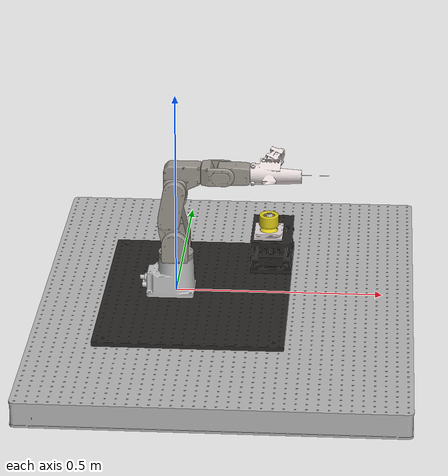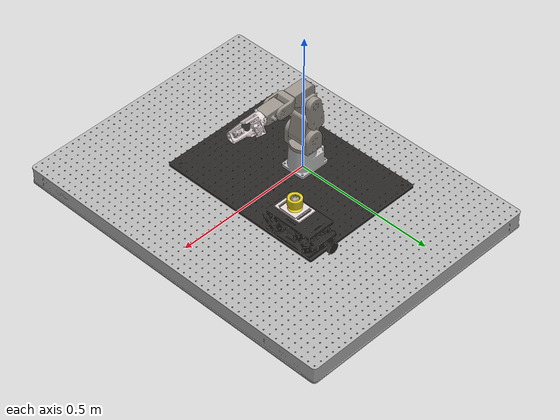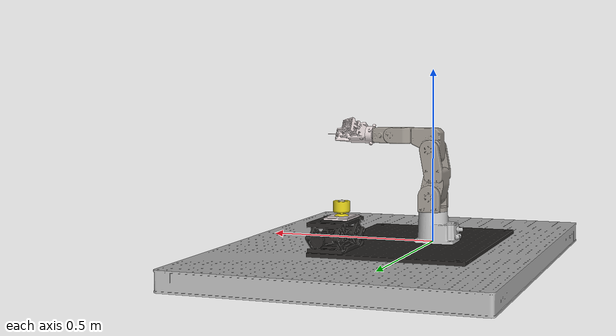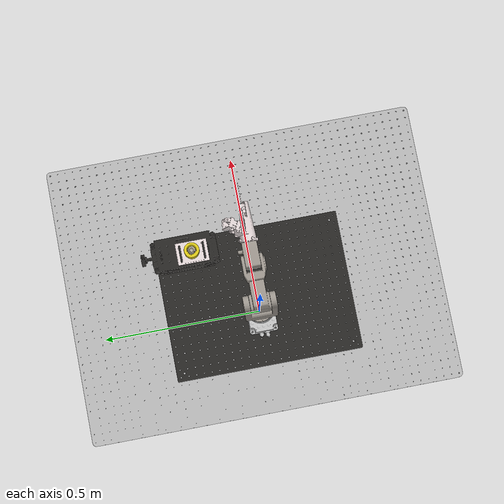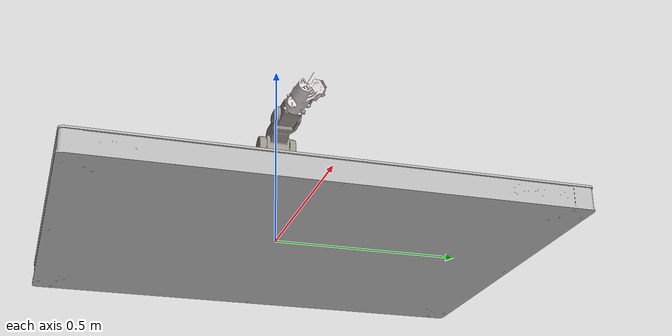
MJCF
<mujoco model="meca_standalone">
  <compiler angle="radian" meshdir="." balanceinertia="true" discardvisual="false"/>
  <option gravity="0 0 -9.81" timestep="0.001" integrator="RK4"/>
  <default>
    <joint damping="0.5" frictionloss="0.2" armature="0.1"/>
    <geom condim="4" solref="0.01 0.9" solimp="0.9 0.95 0.001"/>
    <position ctrllimited="true"/>
  </default>

  <asset>
    <mesh name="base_link" file="STL/base_link.STL"/>
    <mesh name="1_Link" file="STL/1_Link.STL"/>
    <mesh name="2_Link" file="STL/2_Link.STL"/>
    <mesh name="3_Link" file="STL/3_Link.STL"/>
    <mesh name="4_Link" file="STL/4_Link.STL"/>
    <mesh name="5_Link" file="STL/5_Link.STL"/>
    <mesh name="6_Link" file="STL/6_Link.STL"/>
    <mesh name="260107_Total_assembly_simplified" file="STL/260107_Total_assembly_simplified.STL" scale="0.001 0.001 0.001"/>
    <mesh name="Optical_breadboard4560" file="STL/Optical_breadboard4560.STL" scale="0.001 0.001 0.001"/>
    <mesh name="Optical_tabel90120" file="STL/Optical_tabel90120.STL" scale="0.001 0.001 0.001"/>
    <mesh name="Optical_plate" file="STL/Optical_plate.STL" scale="0.001 0.001 0.001"/>
    <mesh name="Trocar_plate" file="STL/Trocar_plate.STL"/>
    <mesh name="Trocar_cover" file="STL/Trocar_cover.STL"/>
    <mesh name="Trocar_gripper" file="STL/Trocar_gripper.STL"/>
    <mesh name="Eye_phantom" file="STL/Eye_phantom.STL"/>
    <mesh name="Eye_trocar" file="STL/Eye_trocar.STL"/>
    <texture name="tex_noise_plastic" type="2d" file="textures/wax.png" rgb1="1 1 1" rgb2="0.9 0.9 0.9"/>
    <texture name="tex_scratch_metal" type="2d" file="textures/metal.png"/>
    <texture name="tex_white_plastic" type="2d" file="textures/plastic.png"/>
    <material name="mat_yellow_resin" texture="tex_noise_plastic"
              rgba="0.95 0.92 0.6 1"
              specular="0.3" shininess="0.1" reflectance="0.3"
              texrepeat="5 5"/>
    <material name="mat_dark_metal" texture="tex_scratch_metal"
              rgba="0.2 0.2 0.2 1"
              specular="0.8" shininess="0.8" reflectance="0.2"
              texrepeat="2 2"/>
    <material name="mat_trocar_metal" texture="tex_scratch_metal"
              rgba="0.7 0.7 0.7 1"
              specular="0.8" shininess="0.8" reflectance="0.2"
              texrepeat="2 2"/>
    <material name="mat_white_plastic" texture="tex_white_plastic"
              rgba="0.95 0.9 0.9 1"
              specular="0.2" shininess="0.1" reflectance="0.0"/>
    <material name="mat_eye_sclera" texture="tex_noise_plastic"
              rgba="0.95 0.95 0.9 1"
              specular="0.9" shininess="0.8" reflectance="0.1"/>
    <material name="mat_robot_metal"  texture="tex_scratch_metal"
              rgba="0.8 0.8 0.8 1"
              specular="0.9" shininess="0.9"/>
  </asset>

  <worldbody>
    <light pos="0.3 0.3 1.0" dir="-0.5 -0.5 -1" directional="true" castshadow="false" diffuse="0.5 0.5 0.5" specular="0.5 0.5 0.5"/>
    <light pos="-0.3 -0.3 0.5" dir="0.5 0.5 -1" directional="true" castshadow="false" diffuse="0.2 0.2 0.2" specular="0.5 0.5 0.5"/>
    <camera name="top_camera" mode="fixed" pos="0.45 -0.025 0.635" fovy="50" euler="0.1 0.6 1.5416"/>
    <camera name="side_camera" mode="fixed" pos="-0.1 0.45 0.175" fovy="50" euler="-1.5708 -0.5 3.1416"/>
    <geom type="mesh" mesh="base_link" pos="0 0.0125 0.0855" quat="0.707105 0 0 -0.707108" rgba="0.75 0.75 0.75 1" contype="0" conaffinity="0" group="1"/>
    <geom size="0.046 0.02" pos="0 0 0.05" type="cylinder" rgba="0.74902 0.74902 0.74902 0"/>
    <body name="1_Link">
      <inertial pos="0.0265829 8.61087e-07 0.0187309" quat="0 0.707107 0 0.707107" mass="0.00110681" diaginertia="2.52756e-08 2.52736e-08 5.67803e-09"/>
      <joint name="1" pos="0 0 0" axis="0 0 1" range="-3.0543 3.0543" actuatorfrcrange="-10 10"/>
      <geom pos="0 0 0.081" quat="0.707105 0 0 -0.707108" type="mesh" material="mat_robot_metal" mesh="1_Link"/>
      <body name="2_Link" pos="0 0 0.135">
        <inertial pos="-0.011581 0.060433 0.025598" quat="0.707107 0 0 0.707107" mass="0.0014997" diaginertia="4.1011e-08 4.1007e-08 4.3707e-09"/>
        <joint name="2" pos="0 0 0" axis="0 1 0" range="-1.2217 1.5708" actuatorfrcrange="-10 10"/>
        <geom quat="0.707105 0.707108 0 0" type="mesh" material="mat_robot_metal" mesh="2_Link"/>
        <body name="3_Link" pos="0 0 0.135">
          <inertial pos="0.00863474 0.0130793 0.000472372" quat="0.610208 0.352554 -0.60274 0.37424" mass="0.369858" diaginertia="0.000449876 0.000401291 0.000237968"/>
          <joint name="3" pos="0 0 0" axis="0 1 0" range="-2.3562 1.2217" actuatorfrcrange="-10 10"/>
          <geom quat="0.707105 0.707108 0 0" type="mesh" material="mat_robot_metal" mesh="3_Link"/>
          <body name="4_Link" pos="0 0 0.038">
            <inertial pos="0.0268017 3.80505e-06 -0.0386581" quat="0.5 0.5 0.5 0.5" mass="5.45514e-05" diaginertia="4.37621e-10 4.37369e-10 6.1925e-11"/>
            <joint name="4" pos="0 0 0" axis="1 0 0" range="-2.9671 2.9671" actuatorfrcrange="-10 10"/>
            <geom pos="0.061 0 0" quat="0.499998 0.5 -0.500002 -0.5" type="mesh" material="mat_robot_metal" mesh="4_Link"/>
            <body name="5_Link" pos="0.12 0 0">
              <inertial pos="0.020511 2.54707e-06 0.000506959" quat="0.485292 0.514377 0.513772 0.485742" mass="0.164362" diaginertia="0.0001195 0.000115999 5.49467e-05"/>
              <joint name="5" pos="0 0 0" axis="0 1 0" range="-2.0071 2.0071" actuatorfrcrange="-10 10"/>
              <geom quat="0.707105 0.707108 0 0" type="mesh" material="mat_robot_metal" mesh="5_Link"/>
              <body name="6_Link" pos="0.07 0 0" quat="0.707107 0 0.707107 0">
                <inertial pos="-4.93382e-09 -3.06476e-06 -0.00515373" quat="0.499788 0.500212 -0.500212 0.499788" mass="0.00318159" diaginertia="1.633e-07 1.12762e-07 1.10035e-07"/>
                <joint name="6" pos="0 0 0" axis="0 0 1" range="-6.2832 6.2832" actuatorfrcrange="-10 10"/>
                <geom pos="0 0 -0.0125" quat="4.63268e-05 0 1 0" type="mesh" material="mat_robot_metal" mesh="6_Link"/>
                <body name="260107_Total_assembly">
                  <inertial pos="0 0 0" mass="0.2" diaginertia="0.001 0.001 0.001"/>
                  <geom pos="-0.07475 -0.0805 -0.011" quat="0.965926 0 0 0.258819" type="mesh" material="mat_white_plastic" mesh="260107_Total_assembly_simplified" contype="0" conaffinity="0"/>
                  <site name="needle_tip" pos="0 0 0.1775" size="0.001" rgba="1 0 0 0"/>
                  <site name="needle_back" pos="0 0 0.1275" size="0.001" rgba="1 0 0 0"/>
                  <camera name="tool_camera" mode="fixed" pos="-0.025 0.045 0.065" fovy="40" euler="0.5 3.3916 -0.453599"/>
                </body>
              </body>
            </body>
          </body>
        </body>
      </body>
    </body>
    <geom pos="0.275 0.59 -0.0135" quat="0.499998 0.5 -0.500002 -0.5" type="mesh" material="mat_dark_metal" mesh="Optical_breadboard4560"/>
    <geom pos="0.575 0.689999 -0.1435" quat="0.499998 0.5 -0.500002 -0.5" type="mesh" rgba="0.7 0.7 0.7 1" mesh="Optical_tabel90120"/>
    <site name="viz_target_tip" pos="0 0 0" size="0.001" rgba="1 0 1 0"/>
    <body name="phantom_assembly" pos="0 0 0">
      <geom pos="0.274999 0.34 -0.0015" quat="0.499998 0.5 -0.500002 -0.5" type="mesh" material="mat_dark_metal" mesh="Optical_plate" contype="0" conaffinity="0"/>
      <body name="rotating_assembly" pos="0.214998 0.165 0.11">
        <geom pos="0 0 0" quat="0.499998 -0.5 0.500002 -0.5" type="mesh" material="mat_white_plastic" mesh="Trocar_plate" contype="0" conaffinity="0"/>
        <body name="Trocar_cover" pos="0.001213 0.010284 -0.006" quat="0.707105 0 0 -0.707108">
          <inertial pos="0 0 0.0031894" mass="0.051623" diaginertia="1.8441e-05 1.8441e-05 1.698e-05"/>
          <geom type="mesh" material="mat_yellow_resin" mesh="Trocar_cover" contype="0" conaffinity="0"/>
          <body name="Trocar_gripper" pos="0 0 0.005" quat="0.572213 0.572216 0.415417 0.415415">
            <inertial pos="6.15922e-08 0.00866204 -8.45455e-08" quat="0.707107 0.707107 0 0" mass="0.0004651" diaginertia="4.62973e-08 4.62973e-08 4.54118e-08"/>
            <geom type="mesh" material="mat_white_plastic" mesh="Trocar_gripper" contype="0" conaffinity="0"/>
            <body name="Eye_phantom" quat="0.685123 0.174941 -0.174941 -0.685126">
              <inertial pos="-0.0124723 -1.50679e-05 -2.5814e-05" quat="0.709403 0.704677 0.013154 -0.00207198" mass="0.00166355" diaginertia="1.67718e-07 1.51029e-07 1.50531e-07"/>
              <geom type="mesh" material="mat_eye_sclera" mesh="Eye_phantom" contype="0" conaffinity="0"/>
              <site name="trocar_depth" pos="-0.0075 0 -0.0075" size="0.001" rgba="1 0 0 0"/>
              <body name="Eye_trocar" pos="-0.018742 -3.9168e-05 0.0062012" quat="0.924581 0.0636132 -0.336065 -0.167821">
                <inertial pos="0 0 0.00446798" mass="7.44793e-06" diaginertia="7.45448e-12 7.45448e-12 5.94805e-12"/>
                <geom type="mesh" material="mat_trocar_metal" mesh="Eye_trocar" contype="0" conaffinity="0"/>
                <site name="trocar_target" pos="0 0 0.0075" size="0.001" rgba="0 1 0 0"/>
              </body>
            </body>
          </body>
        </body>
      </body>
    </body>
  </worldbody>
  <actuator>
    <position name="motor_1" joint="1" kp="500" kv="50" ctrlrange="-3.05 3.05"/>
    <position name="motor_2" joint="2" kp="500" kv="50" ctrlrange="-1.22 1.57"/>
    <position name="motor_3" joint="3" kp="500" kv="50" ctrlrange="-2.35 1.22"/>
    <position name="motor_4" joint="4" kp="200" kv="20" ctrlrange="-2.96 2.96"/>
    <position name="motor_5" joint="5" kp="200" kv="20" ctrlrange="-2.00 2.00"/>
    <position name="motor_6" joint="6" kp="200" kv="20" ctrlrange="-6.28 6.28"/>
  </actuator>
</mujoco>
